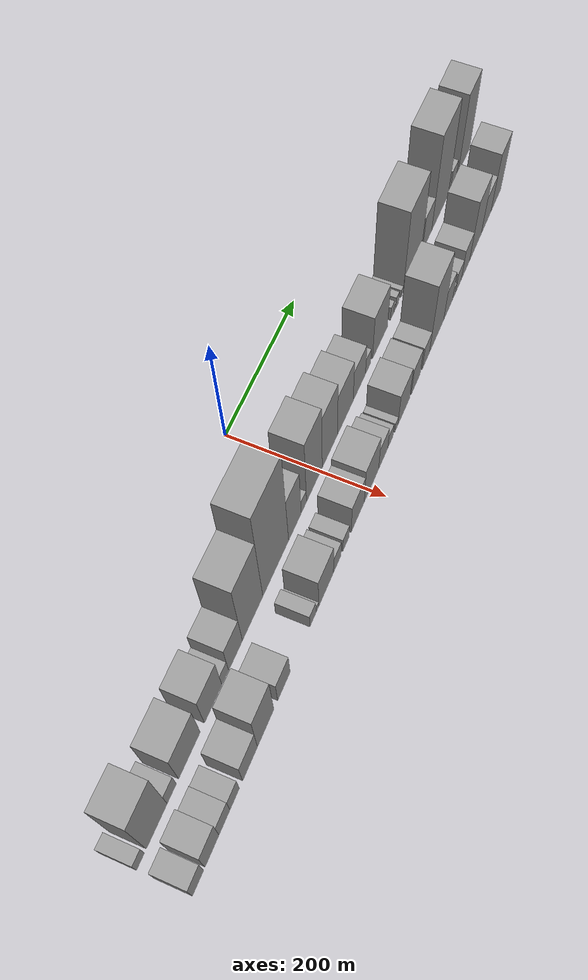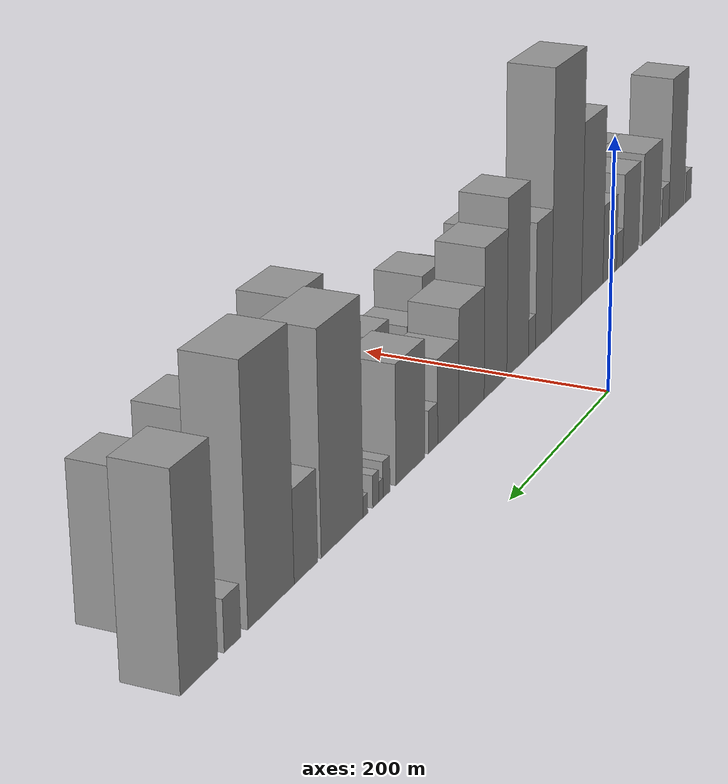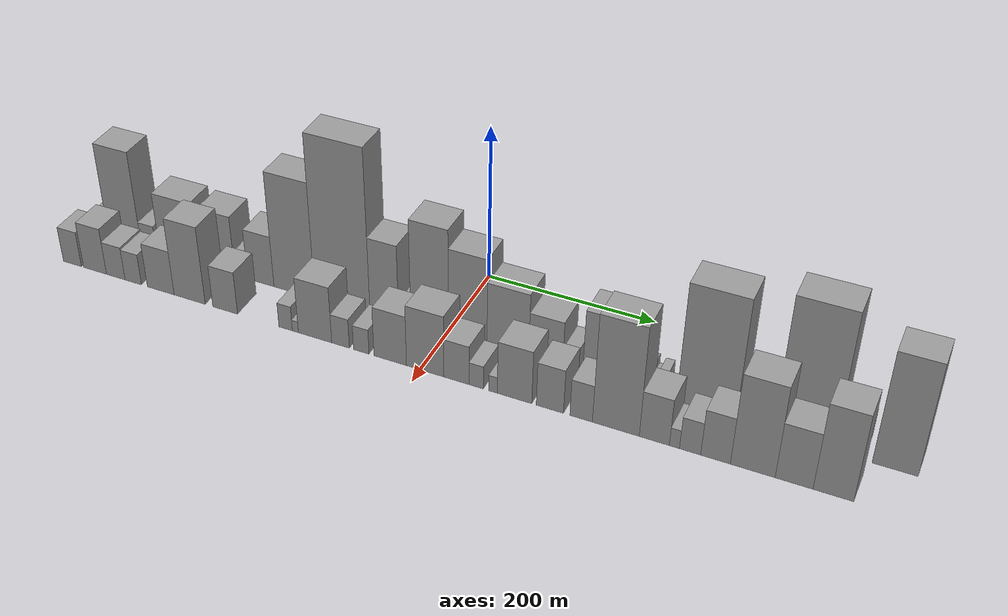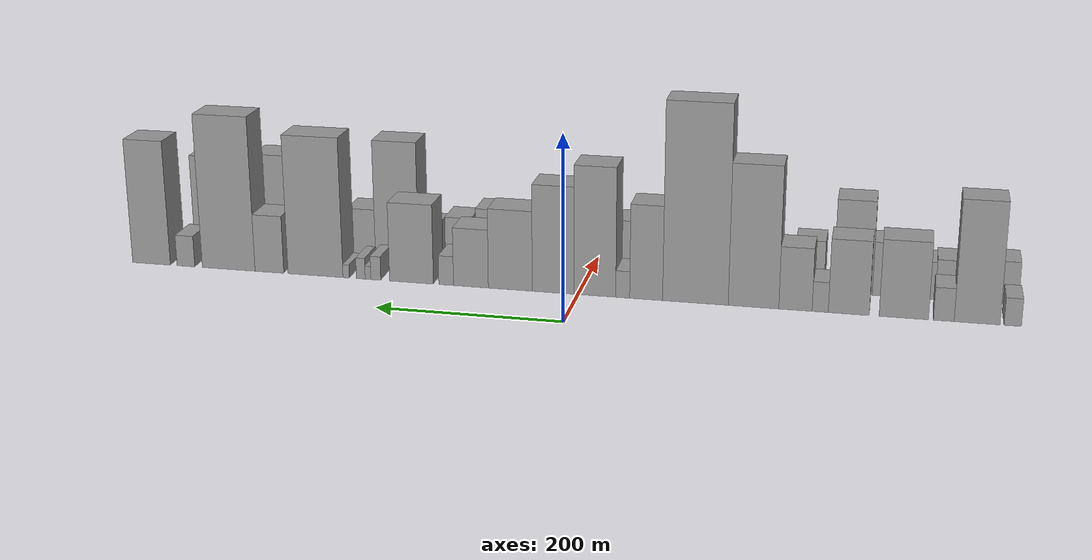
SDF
<sdf version="1.6">
 <world name="default">
  <scene>
   <sky><clouds><speed>12</speed></clouds></sky>
   <ambient>0.4 0.4 0.4 1</ambient>
   <background>0.7 0.7 0.7 1</background>
   <shadows>1</shadows>
  </scene>
  <gravity>0 0 -9.8066</gravity>
  <magnetic_field>6e-06 2.3e-05 -4.2e-05</magnetic_field>
  <physics default="0" name="default_physics" type="ode">
   <ode>
    <solver>
     <type>quick</type>
     <iters>10</iters>
     <sor>1.0</sor>
     <use_dynamic_moi_rescaling>0</use_dynamic_moi_rescaling>
    </solver>
    <constraints>
     <cfm>0</cfm>
     <erp>0.2</erp>
     <contact_max_correcting_vel>100</contact_max_correcting_vel>
     <contact_surface_layer>0.001</contact_surface_layer>
    </constraints>
   </ode>
   <max_step_size>0.004</max_step_size>
   <real_time_factor>1</real_time_factor>
   <real_time_update_rate>250</real_time_update_rate>
  </physics>
  <light name="sun" type="directional">
   <pose>0 0 10 0 0 0</pose>
   <diffuse>0.8 0.8 0.8 1</diffuse>
   <specular>0.2 0.2 0.2 1</specular>
   <attenuation>
    <range>1000</range>
    <constant>0.9</constant>
    <linear>0.01</linear>
    <quadratic>0.001</quadratic>
   </attenuation>
   <direction>-0.5 0.1 -0.9</direction>
  </light>
  <model name="building_1">
   <static>1</static>
   <pose>100.0000 -451.4013 0 0.000000 0.000000 0.000000</pose>
   <link name="link">
    <pose>0 0 15.00 0 0 0</pose>
    <collision name="collision"><geometry><box><size>40.0000 17.1975 30.0000</size></box></geometry></collision>
    <visual name="visual">
     <cast_shadows>0</cast_shadows>
     <geometry><box><size>40.0000 17.1975 30.0000</size></box></geometry>
     <material>
      <script>
       <uri>model://grey_wall/materials/scripts</uri>
       <uri>model://grey_wall/materials/textures</uri>
       <name>vrc/grey_wall</name>
      </script>
     </material>
    </visual>
   </link>
  </model>
  <model name="building_2">
   <static>1</static>
   <pose>100.0000 -415.8871 0 0.000000 0.000000 0.000000</pose>
   <link name="link">
    <pose>0 0 66.00 0 0 0</pose>
    <collision name="collision"><geometry><box><size>40.0000 45.8309 132.0000</size></box></geometry></collision>
    <visual name="visual">
     <cast_shadows>0</cast_shadows>
     <geometry><box><size>40.0000 45.8309 132.0000</size></box></geometry>
     <material>
      <script>
       <uri>model://grey_wall/materials/scripts</uri>
       <uri>model://grey_wall/materials/textures</uri>
       <name>vrc/grey_wall</name>
      </script>
     </material>
    </visual>
   </link>
  </model>
  <model name="building_3">
   <static>1</static>
   <pose>100.0000 -382.5945 0 0.000000 0.000000 0.000000</pose>
   <link name="link">
    <pose>0 0 18.00 0 0 0</pose>
    <collision name="collision"><geometry><box><size>40.0000 20.7544 36.0000</size></box></geometry></collision>
    <visual name="visual">
     <cast_shadows>0</cast_shadows>
     <geometry><box><size>40.0000 20.7544 36.0000</size></box></geometry>
     <material>
      <script>
       <uri>model://grey_wall/materials/scripts</uri>
       <uri>model://grey_wall/materials/textures</uri>
       <name>vrc/grey_wall</name>
      </script>
     </material>
    </visual>
   </link>
  </model>
  <model name="building_4">
   <static>1</static>
   <pose>100.0000 -342.1661 0 0.000000 0.000000 0.000000</pose>
   <link name="link">
    <pose>0 0 42.00 0 0 0</pose>
    <collision name="collision"><geometry><box><size>40.0000 50.1024 84.0000</size></box></geometry></collision>
    <visual name="visual">
     <cast_shadows>0</cast_shadows>
     <geometry><box><size>40.0000 50.1024 84.0000</size></box></geometry>
     <material>
      <script>
       <uri>model://grey_wall/materials/scripts</uri>
       <uri>model://grey_wall/materials/textures</uri>
       <name>vrc/grey_wall</name>
      </script>
     </material>
    </visual>
   </link>
  </model>
  <model name="building_5">
   <static>1</static>
   <pose>100.0000 -286.0475 0 0.000000 0.000000 0.000000</pose>
   <link name="link">
    <pose>0 0 40.50 0 0 0</pose>
    <collision name="collision"><geometry><box><size>40.0000 42.1348 81.0000</size></box></geometry></collision>
    <visual name="visual">
     <cast_shadows>0</cast_shadows>
     <geometry><box><size>40.0000 42.1348 81.0000</size></box></geometry>
     <material>
      <script>
       <uri>model://grey_wall/materials/scripts</uri>
       <uri>model://grey_wall/materials/textures</uri>
       <name>vrc/grey_wall</name>
      </script>
     </material>
    </visual>
   </link>
  </model>
  <model name="building_6">
   <static>1</static>
   <pose>100.0000 -256.6763 0 0.000000 0.000000 0.000000</pose>
   <link name="link">
    <pose>0 0 16.50 0 0 0</pose>
    <collision name="collision"><geometry><box><size>40.0000 16.6077 33.0000</size></box></geometry></collision>
    <visual name="visual">
     <cast_shadows>0</cast_shadows>
     <geometry><box><size>40.0000 16.6077 33.0000</size></box></geometry>
     <material>
      <script>
       <uri>model://grey_wall/materials/scripts</uri>
       <uri>model://grey_wall/materials/textures</uri>
       <name>vrc/grey_wall</name>
      </script>
     </material>
    </visual>
   </link>
  </model>
  <model name="building_7">
   <static>1</static>
   <pose>100.0000 -231.0763 0 0.000000 0.000000 0.000000</pose>
   <link name="link">
    <pose>0 0 34.50 0 0 0</pose>
    <collision name="collision"><geometry><box><size>40.0000 34.5922 69.0000</size></box></geometry></collision>
    <visual name="visual">
     <cast_shadows>0</cast_shadows>
     <geometry><box><size>40.0000 34.5922 69.0000</size></box></geometry>
     <material>
      <script>
       <uri>model://grey_wall/materials/scripts</uri>
       <uri>model://grey_wall/materials/textures</uri>
       <name>vrc/grey_wall</name>
      </script>
     </material>
    </visual>
   </link>
  </model>
  <model name="building_8">
   <static>1</static>
   <pose>100.0000 -187.2894 0 0.000000 0.000000 0.000000</pose>
   <link name="link">
    <pose>0 0 78.00 0 0 0</pose>
    <collision name="collision"><geometry><box><size>40.0000 52.9816 156.0000</size></box></geometry></collision>
    <visual name="visual">
     <cast_shadows>0</cast_shadows>
     <geometry><box><size>40.0000 52.9816 156.0000</size></box></geometry>
     <material>
      <script>
       <uri>model://grey_wall/materials/scripts</uri>
       <uri>model://grey_wall/materials/textures</uri>
       <name>vrc/grey_wall</name>
      </script>
     </material>
    </visual>
   </link>
  </model>
  <model name="building_9">
   <static>1</static>
   <pose>100.0000 -125.9646 0 0.000000 0.000000 0.000000</pose>
   <link name="link">
    <pose>0 0 109.50 0 0 0</pose>
    <collision name="collision"><geometry><box><size>40.0000 69.6679 219.0000</size></box></geometry></collision>
    <visual name="visual">
     <cast_shadows>0</cast_shadows>
     <geometry><box><size>40.0000 69.6679 219.0000</size></box></geometry>
     <material>
      <script>
       <uri>model://grey_wall/materials/scripts</uri>
       <uri>model://grey_wall/materials/textures</uri>
       <name>vrc/grey_wall</name>
      </script>
     </material>
    </visual>
   </link>
  </model>
  <model name="building_10">
   <static>1</static>
   <pose>100.0000 -73.4795 0 0.000000 0.000000 0.000000</pose>
   <link name="link">
    <pose>0 0 52.50 0 0 0</pose>
    <collision name="collision"><geometry><box><size>40.0000 35.3025 105.0000</size></box></geometry></collision>
    <visual name="visual">
     <cast_shadows>0</cast_shadows>
     <geometry><box><size>40.0000 35.3025 105.0000</size></box></geometry>
     <material>
      <script>
       <uri>model://grey_wall/materials/scripts</uri>
       <uri>model://grey_wall/materials/textures</uri>
       <name>vrc/grey_wall</name>
      </script>
     </material>
    </visual>
   </link>
  </model>
  <model name="building_11">
   <static>1</static>
   <pose>100.0000 -48.3216 0 0.000000 0.000000 0.000000</pose>
   <link name="link">
    <pose>0 0 15.00 0 0 0</pose>
    <collision name="collision"><geometry><box><size>40.0000 15.0132 30.0000</size></box></geometry></collision>
    <visual name="visual">
     <cast_shadows>0</cast_shadows>
     <geometry><box><size>40.0000 15.0132 30.0000</size></box></geometry>
     <material>
      <script>
       <uri>model://grey_wall/materials/scripts</uri>
       <uri>model://grey_wall/materials/textures</uri>
       <name>vrc/grey_wall</name>
      </script>
     </material>
    </visual>
   </link>
  </model>
  <model name="building_12">
   <static>1</static>
   <pose>100.0000 -18.0390 0 0.000000 0.000000 0.000000</pose>
   <link name="link">
    <pose>0 0 72.00 0 0 0</pose>
    <collision name="collision"><geometry><box><size>40.0000 45.5520 144.0000</size></box></geometry></collision>
    <visual name="visual">
     <cast_shadows>0</cast_shadows>
     <geometry><box><size>40.0000 45.5520 144.0000</size></box></geometry>
     <material>
      <script>
       <uri>model://grey_wall/materials/scripts</uri>
       <uri>model://grey_wall/materials/textures</uri>
       <name>vrc/grey_wall</name>
      </script>
     </material>
    </visual>
   </link>
  </model>
  <model name="building_13">
   <static>1</static>
   <pose>100.0000 27.4753 0 0.000000 0.000000 0.000000</pose>
   <link name="link">
    <pose>0 0 60.00 0 0 0</pose>
    <collision name="collision"><geometry><box><size>40.0000 45.4766 120.0000</size></box></geometry></collision>
    <visual name="visual">
     <cast_shadows>0</cast_shadows>
     <geometry><box><size>40.0000 45.4766 120.0000</size></box></geometry>
     <material>
      <script>
       <uri>model://grey_wall/materials/scripts</uri>
       <uri>model://grey_wall/materials/textures</uri>
       <name>vrc/grey_wall</name>
      </script>
     </material>
    </visual>
   </link>
  </model>
  <model name="building_14">
   <static>1</static>
   <pose>100.0000 74.5214 0 0.000000 0.000000 0.000000</pose>
   <link name="link">
    <pose>0 0 45.00 0 0 0</pose>
    <collision name="collision"><geometry><box><size>40.0000 48.6157 90.0000</size></box></geometry></collision>
    <visual name="visual">
     <cast_shadows>0</cast_shadows>
     <geometry><box><size>40.0000 48.6157 90.0000</size></box></geometry>
     <material>
      <script>
       <uri>model://grey_wall/materials/scripts</uri>
       <uri>model://grey_wall/materials/textures</uri>
       <name>vrc/grey_wall</name>
      </script>
     </material>
    </visual>
   </link>
  </model>
  <model name="building_15">
   <static>1</static>
   <pose>100.0000 118.2609 0 0.000000 0.000000 0.000000</pose>
   <link name="link">
    <pose>0 0 33.00 0 0 0</pose>
    <collision name="collision"><geometry><box><size>40.0000 38.8634 66.0000</size></box></geometry></collision>
    <visual name="visual">
     <cast_shadows>0</cast_shadows>
     <geometry><box><size>40.0000 38.8634 66.0000</size></box></geometry>
     <material>
      <script>
       <uri>model://grey_wall/materials/scripts</uri>
       <uri>model://grey_wall/materials/textures</uri>
       <name>vrc/grey_wall</name>
      </script>
     </material>
    </visual>
   </link>
  </model>
  <model name="building_16">
   <static>1</static>
   <pose>100.0000 145.9519 0 0.000000 0.000000 0.000000</pose>
   <link name="link">
    <pose>0 0 16.50 0 0 0</pose>
    <collision name="collision"><geometry><box><size>40.0000 16.5186 33.0000</size></box></geometry></collision>
    <visual name="visual">
     <cast_shadows>0</cast_shadows>
     <geometry><box><size>40.0000 16.5186 33.0000</size></box></geometry>
     <material>
      <script>
       <uri>model://grey_wall/materials/scripts</uri>
       <uri>model://grey_wall/materials/textures</uri>
       <name>vrc/grey_wall</name>
      </script>
     </material>
    </visual>
   </link>
  </model>
  <model name="building_17">
   <static>1</static>
   <pose>100.0000 185.0244 0 0.000000 0.000000 0.000000</pose>
   <link name="link">
    <pose>0 0 45.00 0 0 0</pose>
    <collision name="collision"><geometry><box><size>40.0000 49.6262 90.0000</size></box></geometry></collision>
    <visual name="visual">
     <cast_shadows>0</cast_shadows>
     <geometry><box><size>40.0000 49.6262 90.0000</size></box></geometry>
     <material>
      <script>
       <uri>model://grey_wall/materials/scripts</uri>
       <uri>model://grey_wall/materials/textures</uri>
       <name>vrc/grey_wall</name>
      </script>
     </material>
    </visual>
   </link>
  </model>
  <model name="building_18">
   <static>1</static>
   <pose>100.0000 225.5146 0 0.000000 0.000000 0.000000</pose>
   <link name="link">
    <pose>0 0 13.50 0 0 0</pose>
    <collision name="collision"><geometry><box><size>40.0000 11.3542 27.0000</size></box></geometry></collision>
    <visual name="visual">
     <cast_shadows>0</cast_shadows>
     <geometry><box><size>40.0000 11.3542 27.0000</size></box></geometry>
     <material>
      <script>
       <uri>model://grey_wall/materials/scripts</uri>
       <uri>model://grey_wall/materials/textures</uri>
       <name>vrc/grey_wall</name>
      </script>
     </material>
    </visual>
   </link>
  </model>
  <model name="building_19">
   <static>1</static>
   <pose>100.0000 234.4472 0 0.000000 0.000000 0.000000</pose>
   <link name="link">
    <pose>0 0 7.50 0 0 0</pose>
    <collision name="collision"><geometry><box><size>40.0000 6.5109 15.0000</size></box></geometry></collision>
    <visual name="visual">
     <cast_shadows>0</cast_shadows>
     <geometry><box><size>40.0000 6.5109 15.0000</size></box></geometry>
     <material>
      <script>
       <uri>model://grey_wall/materials/scripts</uri>
       <uri>model://grey_wall/materials/textures</uri>
       <name>vrc/grey_wall</name>
      </script>
     </material>
    </visual>
   </link>
  </model>
  <model name="building_20">
   <static>1</static>
   <pose>100.0000 242.7347 0 0.000000 0.000000 0.000000</pose>
   <link name="link">
    <pose>0 0 12.00 0 0 0</pose>
    <collision name="collision"><geometry><box><size>40.0000 10.0641 24.0000</size></box></geometry></collision>
    <visual name="visual">
     <cast_shadows>0</cast_shadows>
     <geometry><box><size>40.0000 10.0641 24.0000</size></box></geometry>
     <material>
      <script>
       <uri>model://grey_wall/materials/scripts</uri>
       <uri>model://grey_wall/materials/textures</uri>
       <name>vrc/grey_wall</name>
      </script>
     </material>
    </visual>
   </link>
  </model>
  <model name="building_21">
   <static>1</static>
   <pose>100.0000 259.4535 0 0.000000 0.000000 0.000000</pose>
   <link name="link">
    <pose>0 0 7.50 0 0 0</pose>
    <collision name="collision"><geometry><box><size>40.0000 7.3734 15.0000</size></box></geometry></collision>
    <visual name="visual">
     <cast_shadows>0</cast_shadows>
     <geometry><box><size>40.0000 7.3734 15.0000</size></box></geometry>
     <material>
      <script>
       <uri>model://grey_wall/materials/scripts</uri>
       <uri>model://grey_wall/materials/textures</uri>
       <name>vrc/grey_wall</name>
      </script>
     </material>
    </visual>
   </link>
  </model>
  <model name="building_22">
   <static>1</static>
   <pose>100.0000 294.9008 0 0.000000 0.000000 0.000000</pose>
   <link name="link">
    <pose>0 0 79.50 0 0 0</pose>
    <collision name="collision"><geometry><box><size>40.0000 63.5212 159.0000</size></box></geometry></collision>
    <visual name="visual">
     <cast_shadows>0</cast_shadows>
     <geometry><box><size>40.0000 63.5212 159.0000</size></box></geometry>
     <material>
      <script>
       <uri>model://grey_wall/materials/scripts</uri>
       <uri>model://grey_wall/materials/textures</uri>
       <name>vrc/grey_wall</name>
      </script>
     </material>
    </visual>
   </link>
  </model>
  <model name="building_23">
   <static>1</static>
   <pose>100.0000 348.4494 0 0.000000 0.000000 0.000000</pose>
   <link name="link">
    <pose>0 0 33.00 0 0 0</pose>
    <collision name="collision"><geometry><box><size>40.0000 33.5760 66.0000</size></box></geometry></collision>
    <visual name="visual">
     <cast_shadows>0</cast_shadows>
     <geometry><box><size>40.0000 33.5760 66.0000</size></box></geometry>
     <material>
      <script>
       <uri>model://grey_wall/materials/scripts</uri>
       <uri>model://grey_wall/materials/textures</uri>
       <name>vrc/grey_wall</name>
      </script>
     </material>
    </visual>
   </link>
  </model>
  <model name="building_24">
   <static>1</static>
   <pose>100.0000 396.3924 0 0.000000 0.000000 0.000000</pose>
   <link name="link">
    <pose>0 0 88.50 0 0 0</pose>
    <collision name="collision"><geometry><box><size>40.0000 62.3100 177.0000</size></box></geometry></collision>
    <visual name="visual">
     <cast_shadows>0</cast_shadows>
     <geometry><box><size>40.0000 62.3100 177.0000</size></box></geometry>
     <material>
      <script>
       <uri>model://grey_wall/materials/scripts</uri>
       <uri>model://grey_wall/materials/textures</uri>
       <name>vrc/grey_wall</name>
      </script>
     </material>
    </visual>
   </link>
  </model>
  <model name="building_25">
   <static>1</static>
   <pose>100.0000 447.0875 0 0.000000 0.000000 0.000000</pose>
   <link name="link">
    <pose>0 0 18.00 0 0 0</pose>
    <collision name="collision"><geometry><box><size>40.0000 21.0802 36.0000</size></box></geometry></collision>
    <visual name="visual">
     <cast_shadows>0</cast_shadows>
     <geometry><box><size>40.0000 21.0802 36.0000</size></box></geometry>
     <material>
      <script>
       <uri>model://grey_wall/materials/scripts</uri>
       <uri>model://grey_wall/materials/textures</uri>
       <name>vrc/grey_wall</name>
      </script>
     </material>
    </visual>
   </link>
  </model>
  <model name="building_26">
   <static>1</static>
   <pose>100.0000 488.2451 0 0.000000 0.000000 0.000000</pose>
   <link name="link">
    <pose>0 0 72.00 0 0 0</pose>
    <collision name="collision"><geometry><box><size>40.0000 45.2351 144.0000</size></box></geometry></collision>
    <visual name="visual">
     <cast_shadows>0</cast_shadows>
     <geometry><box><size>40.0000 45.2351 144.0000</size></box></geometry>
     <material>
      <script>
       <uri>model://grey_wall/materials/scripts</uri>
       <uri>model://grey_wall/materials/textures</uri>
       <name>vrc/grey_wall</name>
      </script>
     </material>
    </visual>
   </link>
  </model>
  <model name="building_27">
   <static>1</static>
   <pose>160.0000 -447.3999 0 0.000000 0.000000 0.000000</pose>
   <link name="link">
    <pose>0 0 24.00 0 0 0</pose>
    <collision name="collision"><geometry><box><size>40.0000 25.2001 48.0000</size></box></geometry></collision>
    <visual name="visual">
     <cast_shadows>0</cast_shadows>
     <geometry><box><size>40.0000 25.2001 48.0000</size></box></geometry>
     <material>
      <script>
       <uri>model://grey_wall/materials/scripts</uri>
       <uri>model://grey_wall/materials/textures</uri>
       <name>vrc/grey_wall</name>
      </script>
     </material>
    </visual>
   </link>
  </model>
  <model name="building_28">
   <static>1</static>
   <pose>160.0000 -415.9202 0 0.000000 0.000000 0.000000</pose>
   <link name="link">
    <pose>0 0 31.50 0 0 0</pose>
    <collision name="collision"><geometry><box><size>40.0000 31.7594 63.0000</size></box></geometry></collision>
    <visual name="visual">
     <cast_shadows>0</cast_shadows>
     <geometry><box><size>40.0000 31.7594 63.0000</size></box></geometry>
     <material>
      <script>
       <uri>model://grey_wall/materials/scripts</uri>
       <uri>model://grey_wall/materials/textures</uri>
       <name>vrc/grey_wall</name>
      </script>
     </material>
    </visual>
   </link>
  </model>
  <model name="building_29">
   <static>1</static>
   <pose>160.0000 -387.2547 0 0.000000 0.000000 0.000000</pose>
   <link name="link">
    <pose>0 0 22.50 0 0 0</pose>
    <collision name="collision"><geometry><box><size>40.0000 25.5715 45.0000</size></box></geometry></collision>
    <visual name="visual">
     <cast_shadows>0</cast_shadows>
     <geometry><box><size>40.0000 25.5715 45.0000</size></box></geometry>
     <material>
      <script>
       <uri>model://grey_wall/materials/scripts</uri>
       <uri>model://grey_wall/materials/textures</uri>
       <name>vrc/grey_wall</name>
      </script>
     </material>
    </visual>
   </link>
  </model>
  <model name="building_30">
   <static>1</static>
   <pose>160.0000 -363.3646 0 0.000000 0.000000 0.000000</pose>
   <link name="link">
    <pose>0 0 21.00 0 0 0</pose>
    <collision name="collision"><geometry><box><size>40.0000 22.2088 42.0000</size></box></geometry></collision>
    <visual name="visual">
     <cast_shadows>0</cast_shadows>
     <geometry><box><size>40.0000 22.2088 42.0000</size></box></geometry>
     <material>
      <script>
       <uri>model://grey_wall/materials/scripts</uri>
       <uri>model://grey_wall/materials/textures</uri>
       <name>vrc/grey_wall</name>
      </script>
     </material>
    </visual>
   </link>
  </model>
  <model name="building_31">
   <static>1</static>
   <pose>160.0000 -326.3223 0 0.000000 0.000000 0.000000</pose>
   <link name="link">
    <pose>0 0 30.00 0 0 0</pose>
    <collision name="collision"><geometry><box><size>40.0000 35.8758 60.0000</size></box></geometry></collision>
    <visual name="visual">
     <cast_shadows>0</cast_shadows>
     <geometry><box><size>40.0000 35.8758 60.0000</size></box></geometry>
     <material>
      <script>
       <uri>model://grey_wall/materials/scripts</uri>
       <uri>model://grey_wall/materials/textures</uri>
       <name>vrc/grey_wall</name>
      </script>
     </material>
    </visual>
   </link>
  </model>
  <model name="building_32">
   <static>1</static>
   <pose>160.0000 -287.8608 0 0.000000 0.000000 0.000000</pose>
   <link name="link">
    <pose>0 0 52.50 0 0 0</pose>
    <collision name="collision"><geometry><box><size>40.0000 41.0472 105.0000</size></box></geometry></collision>
    <visual name="visual">
     <cast_shadows>0</cast_shadows>
     <geometry><box><size>40.0000 41.0472 105.0000</size></box></geometry>
     <material>
      <script>
       <uri>model://grey_wall/materials/scripts</uri>
       <uri>model://grey_wall/materials/textures</uri>
       <name>vrc/grey_wall</name>
      </script>
     </material>
    </visual>
   </link>
  </model>
  <model name="building_33">
   <static>1</static>
   <pose>160.0000 -241.3148 0 0.000000 0.000000 0.000000</pose>
   <link name="link">
    <pose>0 0 28.50 0 0 0</pose>
    <collision name="collision"><geometry><box><size>40.0000 32.0448 57.0000</size></box></geometry></collision>
    <visual name="visual">
     <cast_shadows>0</cast_shadows>
     <geometry><box><size>40.0000 32.0448 57.0000</size></box></geometry>
     <material>
      <script>
       <uri>model://grey_wall/materials/scripts</uri>
       <uri>model://grey_wall/materials/textures</uri>
       <name>vrc/grey_wall</name>
      </script>
     </material>
    </visual>
   </link>
  </model>
  <model name="building_34">
   <static>1</static>
   <pose>160.0000 -164.0060 0 0.000000 0.000000 0.000000</pose>
   <link name="link">
    <pose>0 0 16.50 0 0 0</pose>
    <collision name="collision"><geometry><box><size>40.0000 16.8576 33.0000</size></box></geometry></collision>
    <visual name="visual">
     <cast_shadows>0</cast_shadows>
     <geometry><box><size>40.0000 16.8576 33.0000</size></box></geometry>
     <material>
      <script>
       <uri>model://grey_wall/materials/scripts</uri>
       <uri>model://grey_wall/materials/textures</uri>
       <name>vrc/grey_wall</name>
      </script>
     </material>
    </visual>
   </link>
  </model>
  <model name="building_35">
   <static>1</static>
   <pose>160.0000 -151.8337 0 0.000000 0.000000 0.000000</pose>
   <link name="link">
    <pose>0 0 7.50 0 0 0</pose>
    <collision name="collision"><geometry><box><size>40.0000 7.4872 15.0000</size></box></geometry></collision>
    <visual name="visual">
     <cast_shadows>0</cast_shadows>
     <geometry><box><size>40.0000 7.4872 15.0000</size></box></geometry>
     <material>
      <script>
       <uri>model://grey_wall/materials/scripts</uri>
       <uri>model://grey_wall/materials/textures</uri>
       <name>vrc/grey_wall</name>
      </script>
     </material>
    </visual>
   </link>
  </model>
  <model name="building_36">
   <static>1</static>
   <pose>160.0000 -127.4371 0 0.000000 0.000000 0.000000</pose>
   <link name="link">
    <pose>0 0 37.50 0 0 0</pose>
    <collision name="collision"><geometry><box><size>40.0000 41.3059 75.0000</size></box></geometry></collision>
    <visual name="visual">
     <cast_shadows>0</cast_shadows>
     <geometry><box><size>40.0000 41.3059 75.0000</size></box></geometry>
     <material>
      <script>
       <uri>model://grey_wall/materials/scripts</uri>
       <uri>model://grey_wall/materials/textures</uri>
       <name>vrc/grey_wall</name>
      </script>
     </material>
    </visual>
   </link>
  </model>
  <model name="building_37">
   <static>1</static>
   <pose>160.0000 -95.9454 0 0.000000 0.000000 0.000000</pose>
   <link name="link">
    <pose>0 0 19.50 0 0 0</pose>
    <collision name="collision"><geometry><box><size>40.0000 21.6776 39.0000</size></box></geometry></collision>
    <visual name="visual">
     <cast_shadows>0</cast_shadows>
     <geometry><box><size>40.0000 21.6776 39.0000</size></box></geometry>
     <material>
      <script>
       <uri>model://grey_wall/materials/scripts</uri>
       <uri>model://grey_wall/materials/textures</uri>
       <name>vrc/grey_wall</name>
      </script>
     </material>
    </visual>
   </link>
  </model>
  <model name="building_38">
   <static>1</static>
   <pose>160.0000 -70.7328 0 0.000000 0.000000 0.000000</pose>
   <link name="link">
    <pose>0 0 16.50 0 0 0</pose>
    <collision name="collision"><geometry><box><size>40.0000 18.7475 33.0000</size></box></geometry></collision>
    <visual name="visual">
     <cast_shadows>0</cast_shadows>
     <geometry><box><size>40.0000 18.7475 33.0000</size></box></geometry>
     <material>
      <script>
       <uri>model://grey_wall/materials/scripts</uri>
       <uri>model://grey_wall/materials/textures</uri>
       <name>vrc/grey_wall</name>
      </script>
     </material>
    </visual>
   </link>
  </model>
  <model name="building_39">
   <static>1</static>
   <pose>160.0000 -35.9687 0 0.000000 0.000000 0.000000</pose>
   <link name="link">
    <pose>0 0 33.00 0 0 0</pose>
    <collision name="collision"><geometry><box><size>40.0000 38.7808 66.0000</size></box></geometry></collision>
    <visual name="visual">
     <cast_shadows>0</cast_shadows>
     <geometry><box><size>40.0000 38.7808 66.0000</size></box></geometry>
     <material>
      <script>
       <uri>model://grey_wall/materials/scripts</uri>
       <uri>model://grey_wall/materials/textures</uri>
       <name>vrc/grey_wall</name>
      </script>
     </material>
    </visual>
   </link>
  </model>
  <model name="building_40">
   <static>1</static>
   <pose>160.0000 5.4072 0 0.000000 0.000000 0.000000</pose>
   <link name="link">
    <pose>0 0 40.50 0 0 0</pose>
    <collision name="collision"><geometry><box><size>40.0000 43.9709 81.0000</size></box></geometry></collision>
    <visual name="visual">
     <cast_shadows>0</cast_shadows>
     <geometry><box><size>40.0000 43.9709 81.0000</size></box></geometry>
     <material>
      <script>
       <uri>model://grey_wall/materials/scripts</uri>
       <uri>model://grey_wall/materials/textures</uri>
       <name>vrc/grey_wall</name>
      </script>
     </material>
    </visual>
   </link>
  </model>
  <model name="building_41">
   <static>1</static>
   <pose>160.0000 41.8280 0 0.000000 0.000000 0.000000</pose>
   <link name="link">
    <pose>0 0 25.50 0 0 0</pose>
    <collision name="collision"><geometry><box><size>40.0000 28.8707 51.0000</size></box></geometry></collision>
    <visual name="visual">
     <cast_shadows>0</cast_shadows>
     <geometry><box><size>40.0000 28.8707 51.0000</size></box></geometry>
     <material>
      <script>
       <uri>model://grey_wall/materials/scripts</uri>
       <uri>model://grey_wall/materials/textures</uri>
       <name>vrc/grey_wall</name>
      </script>
     </material>
    </visual>
   </link>
  </model>
  <model name="building_42">
   <static>1</static>
   <pose>160.0000 64.5615 0 0.000000 0.000000 0.000000</pose>
   <link name="link">
    <pose>0 0 15.00 0 0 0</pose>
    <collision name="collision"><geometry><box><size>40.0000 16.5964 30.0000</size></box></geometry></collision>
    <visual name="visual">
     <cast_shadows>0</cast_shadows>
     <geometry><box><size>40.0000 16.5964 30.0000</size></box></geometry>
     <material>
      <script>
       <uri>model://grey_wall/materials/scripts</uri>
       <uri>model://grey_wall/materials/textures</uri>
       <name>vrc/grey_wall</name>
      </script>
     </material>
    </visual>
   </link>
  </model>
  <model name="building_43">
   <static>1</static>
   <pose>160.0000 83.7597 0 0.000000 0.000000 0.000000</pose>
   <link name="link">
    <pose>0 0 10.50 0 0 0</pose>
    <collision name="collision"><geometry><box><size>40.0000 9.8000 21.0000</size></box></geometry></collision>
    <visual name="visual">
     <cast_shadows>0</cast_shadows>
     <geometry><box><size>40.0000 9.8000 21.0000</size></box></geometry>
     <material>
      <script>
       <uri>model://grey_wall/materials/scripts</uri>
       <uri>model://grey_wall/materials/textures</uri>
       <name>vrc/grey_wall</name>
      </script>
     </material>
    </visual>
   </link>
  </model>
  <model name="building_44">
   <static>1</static>
   <pose>160.0000 108.1260 0 0.000000 0.000000 0.000000</pose>
   <link name="link">
    <pose>0 0 34.50 0 0 0</pose>
    <collision name="collision"><geometry><box><size>40.0000 38.9326 69.0000</size></box></geometry></collision>
    <visual name="visual">
     <cast_shadows>0</cast_shadows>
     <geometry><box><size>40.0000 38.9326 69.0000</size></box></geometry>
     <material>
      <script>
       <uri>model://grey_wall/materials/scripts</uri>
       <uri>model://grey_wall/materials/textures</uri>
       <name>vrc/grey_wall</name>
      </script>
     </material>
    </visual>
   </link>
  </model>
  <model name="building_45">
   <static>1</static>
   <pose>160.0000 147.6581 0 0.000000 0.000000 0.000000</pose>
   <link name="link">
    <pose>0 0 28.50 0 0 0</pose>
    <collision name="collision"><geometry><box><size>40.0000 30.1317 57.0000</size></box></geometry></collision>
    <visual name="visual">
     <cast_shadows>0</cast_shadows>
     <geometry><box><size>40.0000 30.1317 57.0000</size></box></geometry>
     <material>
      <script>
       <uri>model://grey_wall/materials/scripts</uri>
       <uri>model://grey_wall/materials/textures</uri>
       <name>vrc/grey_wall</name>
      </script>
     </material>
    </visual>
   </link>
  </model>
  <model name="building_46">
   <static>1</static>
   <pose>160.0000 181.9677 0 0.000000 0.000000 0.000000</pose>
   <link name="link">
    <pose>0 0 24.00 0 0 0</pose>
    <collision name="collision"><geometry><box><size>40.0000 24.4875 48.0000</size></box></geometry></collision>
    <visual name="visual">
     <cast_shadows>0</cast_shadows>
     <geometry><box><size>40.0000 24.4875 48.0000</size></box></geometry>
     <material>
      <script>
       <uri>model://grey_wall/materials/scripts</uri>
       <uri>model://grey_wall/materials/textures</uri>
       <name>vrc/grey_wall</name>
      </script>
     </material>
    </visual>
   </link>
  </model>
  <model name="building_47">
   <static>1</static>
   <pose>160.0000 219.3820 0 0.000000 0.000000 0.000000</pose>
   <link name="link">
    <pose>0 0 70.50 0 0 0</pose>
    <collision name="collision"><geometry><box><size>40.0000 50.3412 141.0000</size></box></geometry></collision>
    <visual name="visual">
     <cast_shadows>0</cast_shadows>
     <geometry><box><size>40.0000 50.3412 141.0000</size></box></geometry>
     <material>
      <script>
       <uri>model://grey_wall/materials/scripts</uri>
       <uri>model://grey_wall/materials/textures</uri>
       <name>vrc/grey_wall</name>
      </script>
     </material>
    </visual>
   </link>
  </model>
  <model name="building_48">
   <static>1</static>
   <pose>160.0000 260.4112 0 0.000000 0.000000 0.000000</pose>
   <link name="link">
    <pose>0 0 30.00 0 0 0</pose>
    <collision name="collision"><geometry><box><size>40.0000 31.7172 60.0000</size></box></geometry></collision>
    <visual name="visual">
     <cast_shadows>0</cast_shadows>
     <geometry><box><size>40.0000 31.7172 60.0000</size></box></geometry>
     <material>
      <script>
       <uri>model://grey_wall/materials/scripts</uri>
       <uri>model://grey_wall/materials/textures</uri>
       <name>vrc/grey_wall</name>
      </script>
     </material>
    </visual>
   </link>
  </model>
  <model name="building_49">
   <static>1</static>
   <pose>160.0000 281.5424 0 0.000000 0.000000 0.000000</pose>
   <link name="link">
    <pose>0 0 12.00 0 0 0</pose>
    <collision name="collision"><geometry><box><size>40.0000 10.5450 24.0000</size></box></geometry></collision>
    <visual name="visual">
     <cast_shadows>0</cast_shadows>
     <geometry><box><size>40.0000 10.5450 24.0000</size></box></geometry>
     <material>
      <script>
       <uri>model://grey_wall/materials/scripts</uri>
       <uri>model://grey_wall/materials/textures</uri>
       <name>vrc/grey_wall</name>
      </script>
     </material>
    </visual>
   </link>
  </model>
  <model name="building_50">
   <static>1</static>
   <pose>160.0000 297.7950 0 0.000000 0.000000 0.000000</pose>
   <link name="link">
    <pose>0 0 21.00 0 0 0</pose>
    <collision name="collision"><geometry><box><size>40.0000 21.9603 42.0000</size></box></geometry></collision>
    <visual name="visual">
     <cast_shadows>0</cast_shadows>
     <geometry><box><size>40.0000 21.9603 42.0000</size></box></geometry>
     <material>
      <script>
       <uri>model://grey_wall/materials/scripts</uri>
       <uri>model://grey_wall/materials/textures</uri>
       <name>vrc/grey_wall</name>
      </script>
     </material>
    </visual>
   </link>
  </model>
  <model name="building_51">
   <static>1</static>
   <pose>160.0000 323.9719 0 0.000000 0.000000 0.000000</pose>
   <link name="link">
    <pose>0 0 30.00 0 0 0</pose>
    <collision name="collision"><geometry><box><size>40.0000 30.3934 60.0000</size></box></geometry></collision>
    <visual name="visual">
     <cast_shadows>0</cast_shadows>
     <geometry><box><size>40.0000 30.3934 60.0000</size></box></geometry>
     <material>
      <script>
       <uri>model://grey_wall/materials/scripts</uri>
       <uri>model://grey_wall/materials/textures</uri>
       <name>vrc/grey_wall</name>
      </script>
     </material>
    </visual>
   </link>
  </model>
  <model name="building_52">
   <static>1</static>
   <pose>160.0000 361.7659 0 0.000000 0.000000 0.000000</pose>
   <link name="link">
    <pose>0 0 58.50 0 0 0</pose>
    <collision name="collision"><geometry><box><size>40.0000 45.1946 117.0000</size></box></geometry></collision>
    <visual name="visual">
     <cast_shadows>0</cast_shadows>
     <geometry><box><size>40.0000 45.1946 117.0000</size></box></geometry>
     <material>
      <script>
       <uri>model://grey_wall/materials/scripts</uri>
       <uri>model://grey_wall/materials/textures</uri>
       <name>vrc/grey_wall</name>
      </script>
     </material>
    </visual>
   </link>
  </model>
  <model name="building_53">
   <static>1</static>
   <pose>160.0000 403.1186 0 0.000000 0.000000 0.000000</pose>
   <link name="link">
    <pose>0 0 36.00 0 0 0</pose>
    <collision name="collision"><geometry><box><size>40.0000 37.5109 72.0000</size></box></geometry></collision>
    <visual name="visual">
     <cast_shadows>0</cast_shadows>
     <geometry><box><size>40.0000 37.5109 72.0000</size></box></geometry>
     <material>
      <script>
       <uri>model://grey_wall/materials/scripts</uri>
       <uri>model://grey_wall/materials/textures</uri>
       <name>vrc/grey_wall</name>
      </script>
     </material>
    </visual>
   </link>
  </model>
  <model name="building_54">
   <static>1</static>
   <pose>160.0000 441.7292 0 0.000000 0.000000 0.000000</pose>
   <link name="link">
    <pose>0 0 55.50 0 0 0</pose>
    <collision name="collision"><geometry><box><size>40.0000 39.7103 111.0000</size></box></geometry></collision>
    <visual name="visual">
     <cast_shadows>0</cast_shadows>
     <geometry><box><size>40.0000 39.7103 111.0000</size></box></geometry>
     <material>
      <script>
       <uri>model://grey_wall/materials/scripts</uri>
       <uri>model://grey_wall/materials/textures</uri>
       <name>vrc/grey_wall</name>
      </script>
     </material>
    </visual>
   </link>
  </model>
 </world>
</sdf>
